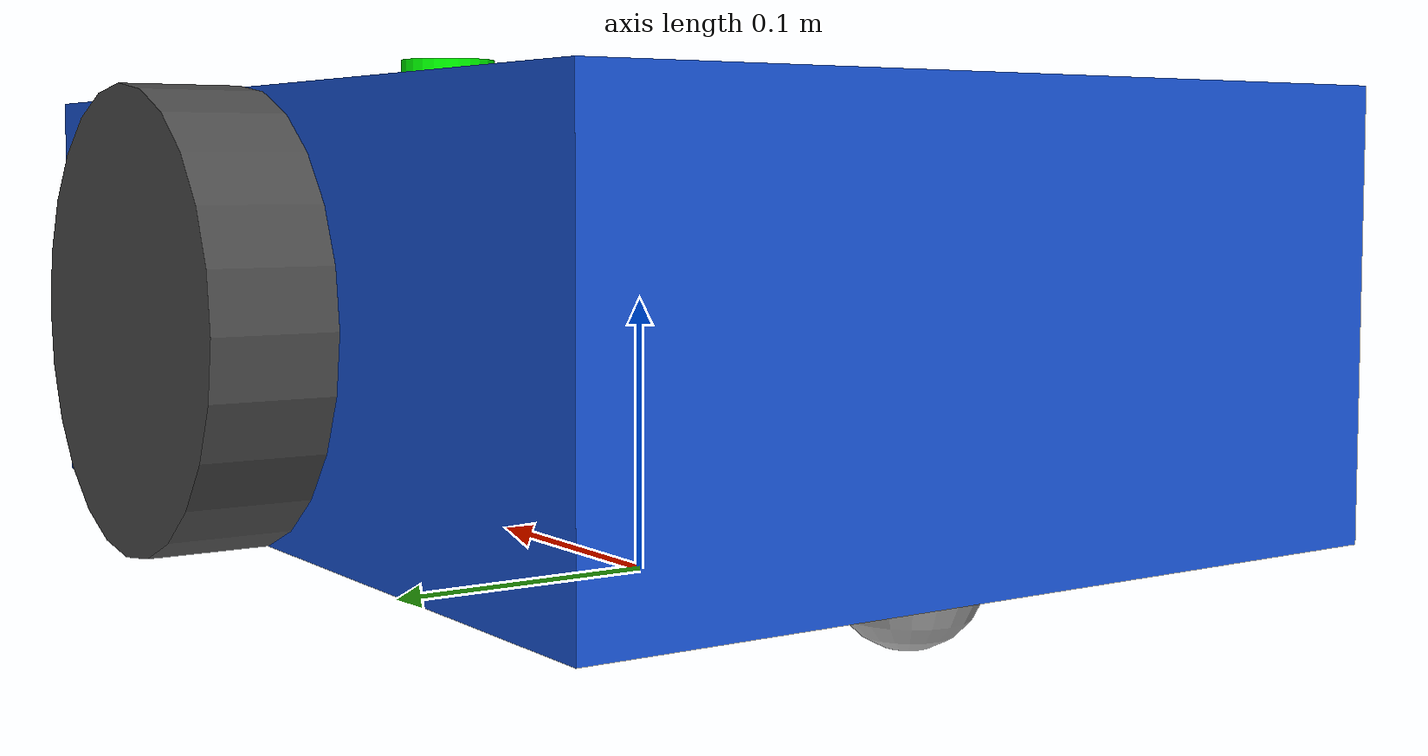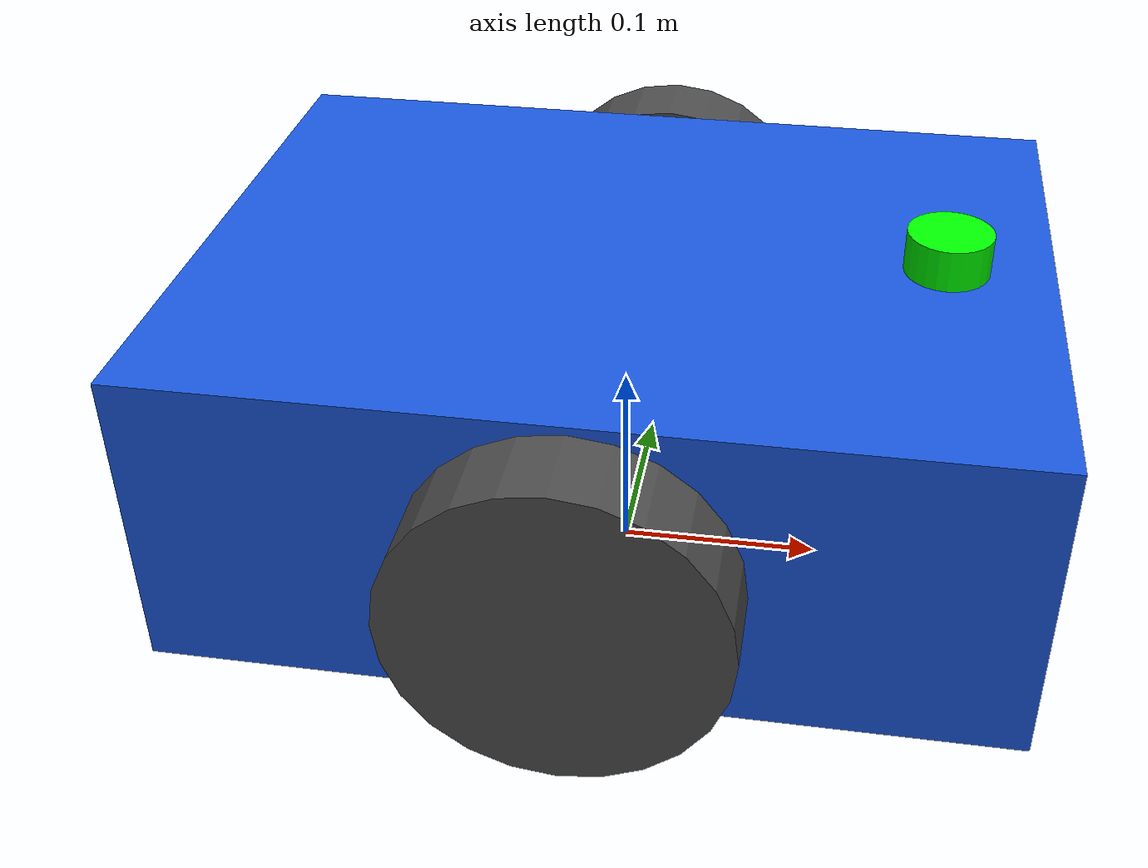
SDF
<?xml version="1.0"?>
<sdf version="1.6">
  <model name="differential_robot">
    <pose>0 0 0.1 0 0 0</pose>

    <!-- BASE_LINK: chasis del robot -->
    <link name="base_link">
      <inertial>
        <pose>0 0 0 0 0 0</pose>
        <mass>3.0</mass>
        <inertia>
          <ixx>0.028125</ixx><ixy>0</ixy><ixz>0</ixz>
          <iyy>0.045625</iyy><iyz>0</iyz>
          <izz>0.0625</izz>
        </inertia>
      </inertial>
      <visual name="visual">
        <geometry><box><size>0.4 0.3 0.15</size></box></geometry>
        <material><ambient>0.1 0.34 0.86 1.0</ambient></material>
      </visual>
      <collision name="collision">
        <geometry><box><size>0.4 0.3 0.15</size></box></geometry>
        <surface><friction><ode><mu>1.0</mu><mu2>1.0</mu2></ode></friction></surface>
      </collision>
    </link>

    <!-- LEFT WHEEL -->
    <link name="left_wheel_link">
      <pose>0 0.175 0 0 0 0</pose>
      <inertial>
        <mass>0.3</mass>
        <inertia><ixx>0.00084</ixx><iyy>0.00084</iyy><izz>0.00084</izz></inertia>
      </inertial>
      <visual name="visual">
        <geometry><cylinder><radius>0.075</radius><length>0.04</length></cylinder></geometry>
        <pose>0 0 0 1.5708 0 0</pose>
        <material><ambient>0.3 0.3 0.3 1.0</ambient></material>
      </visual>
      <collision name="collision">
        <geometry><cylinder><radius>0.075</radius><length>0.04</length></cylinder></geometry>
        <pose>0 0 0 1.5708 0 0</pose>
      </collision>
    </link>
    <joint name="base_to_left_wheel" type="revolute">
      <parent>base_link</parent><child>left_wheel_link</child>
      <axis><xyz>0 1 0</xyz><limit><effort>1.0</effort><velocity>10.0</velocity><lower>-3.14159</lower><upper>3.14159</upper></limit></axis>
    </joint>

    <!-- RIGHT WHEEL -->
    <link name="right_wheel_link">
      <pose>0 -0.175 0 0 0 0</pose>
      <inertial>
        <mass>0.3</mass>
        <inertia><ixx>0.00084</ixx><iyy>0.00084</iyy><izz>0.00084</izz></inertia>
      </inertial>
      <visual name="visual">
        <geometry><cylinder><radius>0.075</radius><length>0.04</length></cylinder></geometry>
        <pose>0 0 0 1.5708 0 0</pose>
        <material><ambient>0.3 0.3 0.3 1.0</ambient></material>
      </visual>
      <collision name="collision">
        <geometry><cylinder><radius>0.075</radius><length>0.04</length></cylinder></geometry>
        <pose>0 0 0 1.5708 0 0</pose>
      </collision>
    </link>
    <joint name="base_to_right_wheel" type="revolute">
      <parent>base_link</parent><child>right_wheel_link</child>
      <axis><xyz>0 1 0</xyz><limit><effort>1.0</effort><velocity>10.0</velocity><lower>-3.14159</lower><upper>3.14159</upper></limit></axis>
    </joint>

    <!-- CASTER -->
    <link name="caster_wheel_link">
      <pose>-0.15 0 -0.075 0 0 0</pose>
      <inertial>
        <mass>0.05</mass>
        <inertia><ixx>2e-5</ixx><iyy>2e-5</iyy><izz>2e-5</izz></inertia>
      </inertial>
      <visual name="visual">
        <geometry><sphere><radius>0.025</radius></sphere></geometry>
        <material><ambient>0.7 0.7 0.7 1.0</ambient></material>
      </visual>
      <collision name="collision">
        <geometry><sphere><radius>0.025</radius></sphere></geometry>
      </collision>
    </link>
    <joint name="base_to_caster" type="fixed">
      <parent>base_link</parent><child>caster_wheel_link</child>
    </joint>

    <!-- LASER_FRAME link with embedded sensor -->
    <link name="laser_frame">
      <pose>0.15 0 0.08 0 0 0</pose>
      <inertial>
        <mass>0.001</mass>
        <inertia><ixx>1e-6</ixx><iyy>1e-6</iyy><izz>1e-6</izz></inertia>
      </inertial>
      <visual name="visual">
        <geometry><cylinder><radius>0.02</radius><length>0.03</length></cylinder></geometry>
        <material><ambient>0.0 1.0 0.0 1.0</ambient></material>
      </visual>
      <collision name="collision">
        <geometry><cylinder><radius>0.02</radius><length>0.03</length></cylinder></geometry>
      </collision>
      <sensor name="laser_sensor" type="ray">
        <pose>0 0 0 0 0 0</pose>
        <ray>
          <scan>
            <horizontal>
              <samples>360</samples>
              <resolution>1.0</resolution>
              <min_angle>-2.35619</min_angle>
              <max_angle>2.35619</max_angle>
            </horizontal>
          </scan>
          <range>
            <min>0.10</min>
            <max>10.0</max>
          </range>
          <noise>
            <type>gaussian</type>
            <mean>0.0</mean>
            <stddev>0.01</stddev>
          </noise>
        </ray>
        <plugin name="laser_plugin" filename="libgazebo_ros_laser.so">
          <topicName>scan</topicName>
          <frameName>laser_frame</frameName>
          <updateRate>20.0</updateRate>
        </plugin>
      </sensor>
    </link>
    <joint name="base_to_laser" type="fixed">
      <parent>base_link</parent><child>laser_frame</child>
    </joint>

    <!-- DIFF DRIVE PLUGIN -->
    <plugin name="diff_drive" filename="libgazebo_ros_diff_drive.so">
      <rosDebugLevel>na</rosDebugLevel>
      <publishWheelTF>true</publishWheelTF>
      <publishWheelJointState>true</publishWheelJointState>
      <robotNamespace>/</robotNamespace>
      <leftJoint>base_to_left_wheel</leftJoint>
      <rightJoint>base_to_right_wheel</rightJoint>
      <wheelSeparation>0.35</wheelSeparation>
      <wheelDiameter>0.15</wheelDiameter>
      <torque>1.0</torque>
      <commandTopic>cmd_vel</commandTopic>
      <odometryTopic>odom</odometryTopic>
      <odometryFrame>odom</odometryFrame>
      <robotBaseFrame>base_link</robotBaseFrame>
      <publishOdomTF>true</publishOdomTF>
    </plugin>

  </model>
</sdf>
